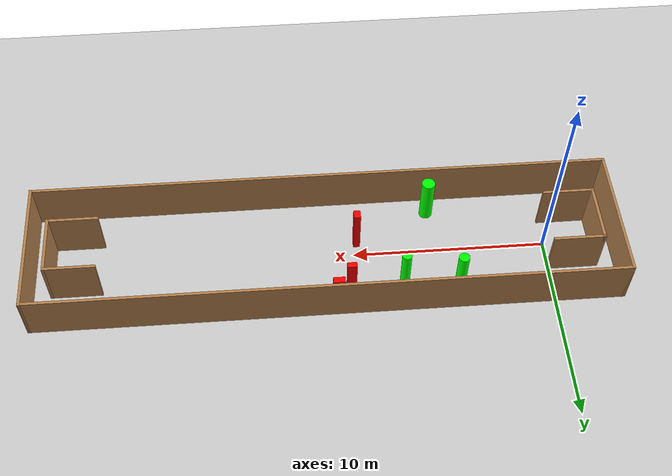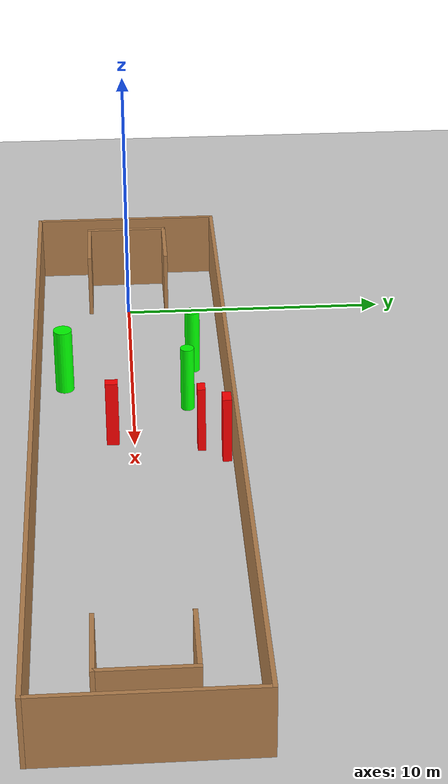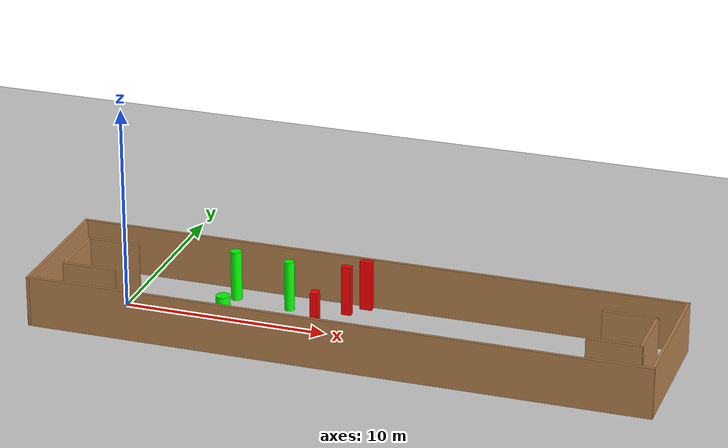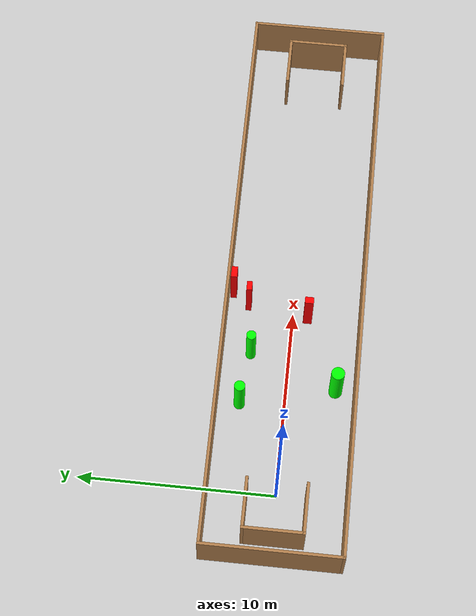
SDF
<sdf version="1.7">
 <world name="default">
  <light name="sun" type="directional">
   <pose>0 0 10 0 -0 0</pose>
   <diffuse>0.8 0.8 0.8 1</diffuse>
   <specular>0.2 0.2 0.2 1</specular>
   <attenuation>
    <range>1000</range>
    <constant>0.9</constant>
    <linear>0.01</linear>
    <quadratic>0.001</quadratic>
   </attenuation>
   <direction>-0.5 0.1 -0.9</direction>
   <spot><inner_angle>0</inner_angle><outer_angle>0</outer_angle><falloff>0</falloff></spot>
  </light>
  <model name="ground_plane">
   <static>1</static>
   <link name="link">
    <collision name="collision">
     <geometry><plane><normal>0 0 1</normal><size>100 100</size></plane></geometry>
     <surface>
      <contact><collide_bitmask>65535</collide_bitmask></contact>
      <friction><ode><mu>100</mu><mu2>50</mu2></ode></friction>
     </surface>
    </collision>
    <visual name="visual">
     <cast_shadows>0</cast_shadows>
     <geometry><plane><normal>0 0 1</normal><size>100 100</size></plane></geometry>
     <material>
      <script><uri>file://media/materials/scripts/gazebo.material</uri><name>Gazebo/Grey</name></script>
     </material>
    </visual>
   </link>
  </model>
  <gravity>0 0 -9.8</gravity>
  <magnetic_field>6e-06 2.3e-05 -4.2e-05</magnetic_field>
  <atmosphere type="adiabatic"/>
  <physics type="ode">
   <max_step_size>0.001</max_step_size>
   <real_time_factor>1</real_time_factor>
   <real_time_update_rate>1000</real_time_update_rate>
  </physics>
  <scene><ambient>0.4 0.4 0.4 1</ambient><background>0.7 0.7 0.7 1</background><shadows>1</shadows></scene>
  <spherical_coordinates>
   <surface_model>EARTH_WGS84</surface_model>
   <latitude_deg>0</latitude_deg>
   <longitude_deg>0</longitude_deg>
   <elevation>0</elevation>
   <heading_deg>0</heading_deg>
  </spherical_coordinates>
  <model name="my_base_walls">
   <link name="Wall_0">
    <collision name="Wall_0_Collision">
     <geometry><box><size>7.15 0.15 2.5</size></box></geometry>
     <pose>0 0 1.25 0 -0 0</pose>
    </collision>
    <visual name="Wall_0_Visual">
     <pose>0 0 1.25 0 -0 0</pose>
     <geometry><box><size>7.15 0.15 2.5</size></box></geometry>
     <material>
      <script><uri>file://media/materials/scripts/gazebo.material</uri><name>Gazebo/Wood</name></script>
      <ambient>1 1 1 1</ambient>
     </material>
     <meta><layer>0</layer></meta>
    </visual>
    <pose>-15 0 0 0 -0 1.5708</pose>
   </link>
   <link name="Wall_10">
    <collision name="Wall_10_Collision">
     <geometry><box><size>2.65 0.15 2.5</size></box></geometry>
     <pose>0 0 1.25 0 -0 0</pose>
    </collision>
    <visual name="Wall_10_Visual">
     <pose>0 0 1.25 0 -0 0</pose>
     <geometry><box><size>2.65 0.15 2.5</size></box></geometry>
     <material>
      <script><uri>file://media/materials/scripts/gazebo.material</uri><name>Gazebo/Wood</name></script>
      <ambient>1 1 1 1</ambient>
     </material>
     <meta><layer>0</layer></meta>
    </visual>
    <pose>-12.75 -1.5 0 0 -0 0</pose>
   </link>
   <link name="Wall_12">
    <collision name="Wall_12_Collision">
     <geometry><box><size>2.65 0.15 2.5</size></box></geometry>
     <pose>0 0 1.25 0 -0 0</pose>
    </collision>
    <visual name="Wall_12_Visual">
     <pose>0 0 1.25 0 -0 0</pose>
     <geometry><box><size>2.65 0.15 2.5</size></box></geometry>
     <material>
      <script><uri>file://media/materials/scripts/gazebo.material</uri><name>Gazebo/Wood</name></script>
      <ambient>1 1 1 1</ambient>
     </material>
     <meta><layer>0</layer></meta>
    </visual>
    <pose>-12.75 1.5 0 0 -0 0</pose>
   </link>
   <link name="Wall_14">
    <collision name="Wall_14_Collision">
     <geometry><box><size>3.15 0.15 2.5</size></box></geometry>
     <pose>0 0 1.25 0 -0 0</pose>
    </collision>
    <visual name="Wall_14_Visual">
     <pose>0 0 1.25 0 -0 0</pose>
     <geometry><box><size>3.15 0.15 2.5</size></box></geometry>
     <material>
      <script><uri>file://media/materials/scripts/gazebo.material</uri><name>Gazebo/Wood</name></script>
      <ambient>1 1 1 1</ambient>
     </material>
     <meta><layer>0</layer></meta>
    </visual>
    <pose>14 0 0 0 -0 -1.5708</pose>
   </link>
   <link name="Wall_15">
    <collision name="Wall_15_Collision">
     <geometry><box><size>2.65 0.15 2.5</size></box></geometry>
     <pose>0 0 1.25 0 -0 0</pose>
    </collision>
    <visual name="Wall_15_Visual">
     <pose>0 0 1.25 0 -0 0</pose>
     <geometry><box><size>2.65 0.15 2.5</size></box></geometry>
     <material>
      <script><uri>file://media/materials/scripts/gazebo.material</uri><name>Gazebo/Wood</name></script>
      <ambient>1 1 1 1</ambient>
     </material>
     <meta><layer>0</layer></meta>
    </visual>
    <pose>12.75 -1.5 0 0 -0 3.14159</pose>
   </link>
   <link name="Wall_17">
    <collision name="Wall_17_Collision">
     <geometry><box><size>2.65 0.15 2.5</size></box></geometry>
     <pose>0 0 1.25 0 -0 0</pose>
    </collision>
    <visual name="Wall_17_Visual">
     <pose>0 0 1.25 0 -0 0</pose>
     <geometry><box><size>2.65 0.15 2.5</size></box></geometry>
     <material>
      <script><uri>file://media/materials/scripts/gazebo.material</uri><name>Gazebo/Wood</name></script>
      <ambient>1 1 1 1</ambient>
     </material>
     <meta><layer>0</layer></meta>
    </visual>
    <pose>12.75 1.5 0 0 -0 3.14159</pose>
   </link>
   <link name="Wall_2">
    <collision name="Wall_2_Collision">
     <geometry><box><size>30.15 0.15 2.5</size></box></geometry>
     <pose>0 0 1.25 0 -0 0</pose>
    </collision>
    <visual name="Wall_2_Visual">
     <pose>0 0 1.25 0 -0 0</pose>
     <geometry><box><size>30.15 0.15 2.5</size></box></geometry>
     <material>
      <script><uri>file://media/materials/scripts/gazebo.material</uri><name>Gazebo/Wood</name></script>
      <ambient>1 1 1 1</ambient>
     </material>
     <meta><layer>0</layer></meta>
    </visual>
    <pose>-0 -3.5 0 0 -0 0</pose>
   </link>
   <link name="Wall_4">
    <collision name="Wall_4_Collision">
     <geometry><box><size>30.15 0.15 2.5</size></box></geometry>
     <pose>0 0 1.25 0 -0 0</pose>
    </collision>
    <visual name="Wall_4_Visual">
     <pose>0 0 1.25 0 -0 0</pose>
     <geometry><box><size>30.15 0.15 2.5</size></box></geometry>
     <material>
      <script><uri>file://media/materials/scripts/gazebo.material</uri><name>Gazebo/Wood</name></script>
      <ambient>1 1 1 1</ambient>
     </material>
     <meta><layer>0</layer></meta>
    </visual>
    <pose>-0 3.5 0 0 -0 0</pose>
   </link>
   <link name="Wall_6">
    <collision name="Wall_6_Collision">
     <geometry><box><size>7.15 0.15 2.5</size></box></geometry>
     <pose>0 0 1.25 0 -0 0</pose>
    </collision>
    <visual name="Wall_6_Visual">
     <pose>0 0 1.25 0 -0 0</pose>
     <geometry><box><size>7.15 0.15 2.5</size></box></geometry>
     <material>
      <script><uri>file://media/materials/scripts/gazebo.material</uri><name>Gazebo/Wood</name></script>
      <ambient>1 1 1 1</ambient>
     </material>
     <meta><layer>0</layer></meta>
    </visual>
    <pose>15 0 0 0 -0 -1.5708</pose>
   </link>
   <link name="Wall_9">
    <collision name="Wall_9_Collision">
     <geometry><box><size>3.15 0.15 2.5</size></box></geometry>
     <pose>0 0 1.25 0 -0 0</pose>
    </collision>
    <visual name="Wall_9_Visual">
     <pose>0 0 1.25 0 -0 0</pose>
     <geometry><box><size>3.15 0.15 2.5</size></box></geometry>
     <material>
      <script><uri>file://media/materials/scripts/gazebo.material</uri><name>Gazebo/Wood</name></script>
      <ambient>1 1 1 1</ambient>
     </material>
     <meta><layer>0</layer></meta>
    </visual>
    <pose>-14 0 0 0 -0 -1.5708</pose>
   </link>
   <static>1</static>
   <pose>11.5 0 0 0 -0 0</pose>
  </model>
  <model name="cylinder1">
   <static>1</static>
   <link name="link">
    <inertial>
     <mass>1</mass>
     <inertia><ixx>0.5</ixx><ixy>0</ixy><ixz>0</ixz><iyy>0.5</iyy><iyz>0</iyz><izz>1</izz></inertia>
    </inertial>
    <collision name="collision">
     <geometry><cylinder><radius>0.2491291346787855</radius><length>2.5</length></cylinder></geometry>
    </collision>
    <visual name="visual">
     <geometry><cylinder><radius>0.2491291346787855</radius><length>2.5</length></cylinder></geometry>
     <material>
      <ambient>0 1 0 1</ambient>
      <diffuse>0 1 0 1</diffuse>
      <specular>0.1 0.1 0.1 1</specular>
      <emissive>0 0 0 0</emissive>
     </material>
    </visual>
   </link>
   <pose>7.538087729401461 2.001034450993343 1.25 0 0 0</pose>
  </model>
  <model name="cylinder2">
   <static>1</static>
   <link name="link">
    <inertial>
     <mass>1</mass>
     <inertia><ixx>0.5</ixx><ixy>0</ixy><ixz>0</ixz><iyy>0.5</iyy><iyz>0</iyz><izz>1</izz></inertia>
    </inertial>
    <collision name="collision">
     <geometry><cylinder><radius>0.2769241785550023</radius><length>2.5</length></cylinder></geometry>
    </collision>
    <visual name="visual">
     <geometry><cylinder><radius>0.2769241785550023</radius><length>2.5</length></cylinder></geometry>
     <material>
      <ambient>0 1 0 1</ambient>
      <diffuse>0 1 0 1</diffuse>
      <specular>0.1 0.1 0.1 1</specular>
      <emissive>0 0 0 0</emissive>
     </material>
    </visual>
   </link>
   <pose>4.731584664090468 2.3173412803889883 1.25 0 0 0</pose>
  </model>
  <model name="cylinder3">
   <static>1</static>
   <link name="link">
    <inertial>
     <mass>1</mass>
     <inertia><ixx>0.5</ixx><ixy>0</ixy><ixz>0</ixz><iyy>0.5</iyy><iyz>0</iyz><izz>1</izz></inertia>
    </inertial>
    <collision name="collision">
     <geometry><cylinder><radius>0.34031661511900824</radius><length>2.5</length></cylinder></geometry>
    </collision>
    <visual name="visual">
     <geometry><cylinder><radius>0.34031661511900824</radius><length>2.5</length></cylinder></geometry>
     <material>
      <ambient>0 1 0 1</ambient>
      <diffuse>0 1 0 1</diffuse>
      <specular>0.1 0.1 0.1 1</specular>
      <emissive>0 0 0 0</emissive>
     </material>
    </visual>
   </link>
   <pose>5.894121315014269 -2.5099177383710485 1.25 0 0 0</pose>
  </model>
  <model name="box1">
   <static>1</static>
   <link name="link">
    <inertial>
     <mass>1</mass>
     <inertia><ixx>0.083</ixx><ixy>0</ixy><ixz>0</ixz><iyy>0.083</iyy><iyz>0</iyz><izz>0.083</izz></inertia>
    </inertial>
    <collision name="collision">
     <geometry><box><size>0.3472929951089368 0.454078959704796 2.5</size></box></geometry>
    </collision>
    <visual name="visual">
     <geometry><box><size>0.3472929951089368 0.454078959704796 2.5</size></box></geometry>
     <material>
      <ambient>1 0 0 1</ambient>
      <diffuse>1 0 0 1</diffuse>
      <specular>0.1 0.1 0.1 1</specular>
      <emissive>0 0 0 0</emissive>
     </material>
    </visual>
    <sensor name="my_contact" type="contact">
     <contact><collision>box_collision</collision><topic>__default_topic__</topic></contact>
    </sensor>
   </link>
   <pose>9.782701910987617 -0.7667786681831497 1.25 0 0 0</pose>
  </model>
  <model name="box2">
   <static>1</static>
   <link name="link">
    <inertial>
     <mass>1</mass>
     <inertia><ixx>0.083</ixx><ixy>0</ixy><ixz>0</ixz><iyy>0.083</iyy><iyz>0</iyz><izz>0.083</izz></inertia>
    </inertial>
    <collision name="collision">
     <geometry><box><size>0.5920823134538447 0.3143521256755271 2.5</size></box></geometry>
    </collision>
    <visual name="visual">
     <geometry><box><size>0.5920823134538447 0.3143521256755271 2.5</size></box></geometry>
     <material>
      <ambient>1 0 0 1</ambient>
      <diffuse>1 0 0 1</diffuse>
      <specular>0.1 0.1 0.1 1</specular>
      <emissive>0 0 0 0</emissive>
     </material>
    </visual>
    <sensor name="my_contact" type="contact">
     <contact><collision>box_collision</collision><topic>__default_topic__</topic></contact>
    </sensor>
   </link>
   <pose>11.006953292404575 3.2086067953818445 1.25 0 0 0</pose>
  </model>
  <model name="box3">
   <static>1</static>
   <link name="link">
    <inertial>
     <mass>1</mass>
     <inertia><ixx>0.083</ixx><ixy>0</ixy><ixz>0</ixz><iyy>0.083</iyy><iyz>0</iyz><izz>0.083</izz></inertia>
    </inertial>
    <collision name="collision">
     <geometry><box><size>0.4845253179903523 0.28294384082498936 2.5</size></box></geometry>
    </collision>
    <visual name="visual">
     <geometry><box><size>0.4845253179903523 0.28294384082498936 2.5</size></box></geometry>
     <material>
      <ambient>1 0 0 1</ambient>
      <diffuse>1 0 0 1</diffuse>
      <specular>0.1 0.1 0.1 1</specular>
      <emissive>0 0 0 0</emissive>
     </material>
    </visual>
    <sensor name="my_contact" type="contact">
     <contact><collision>box_collision</collision><topic>__default_topic__</topic></contact>
    </sensor>
   </link>
   <pose>10.298511810885204 2.359222617616962 1.25 0 0 0</pose>
  </model>
 </world>
</sdf>
